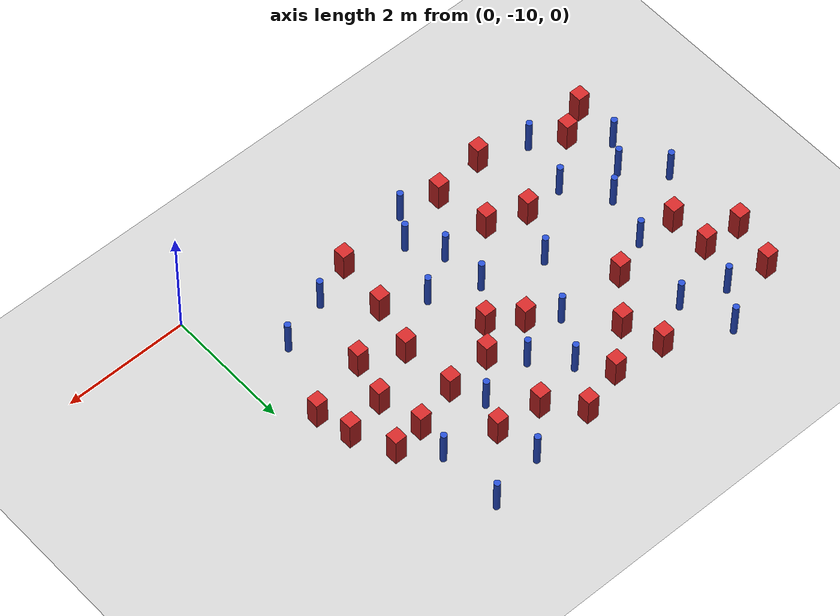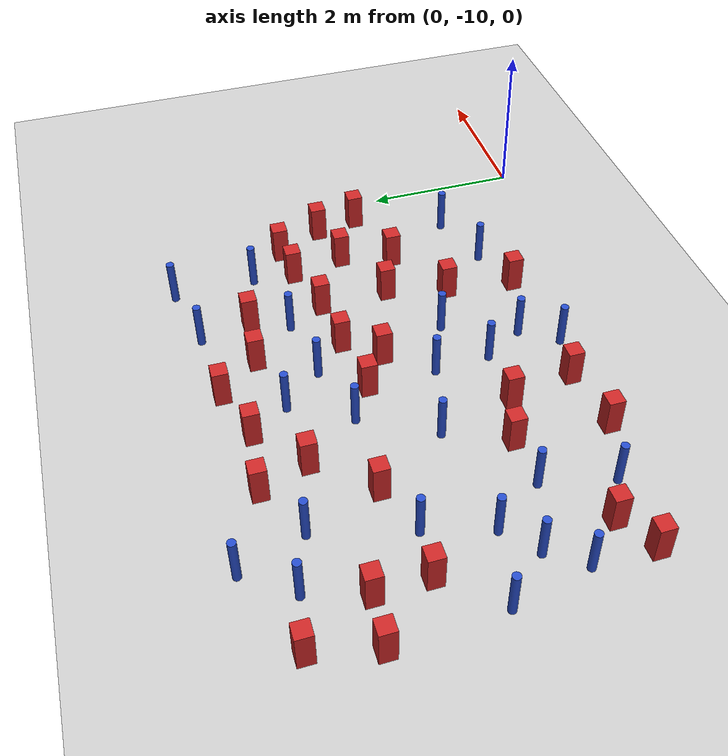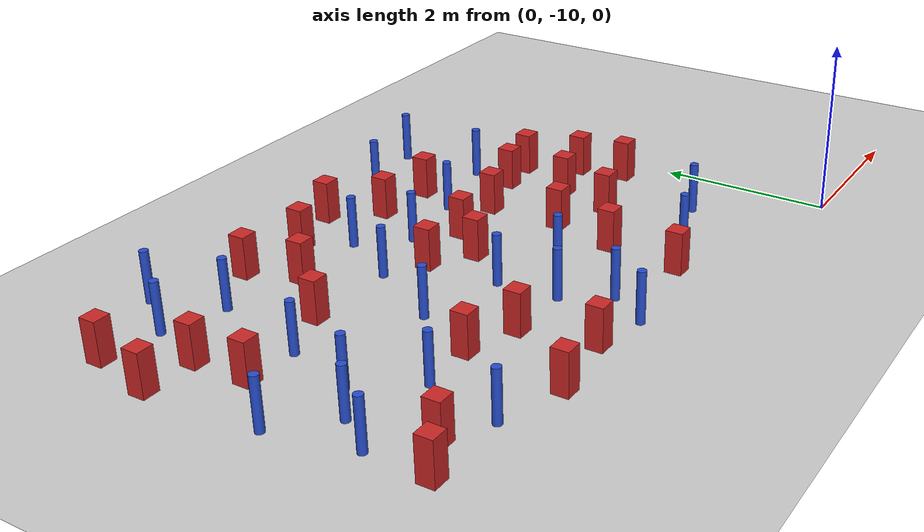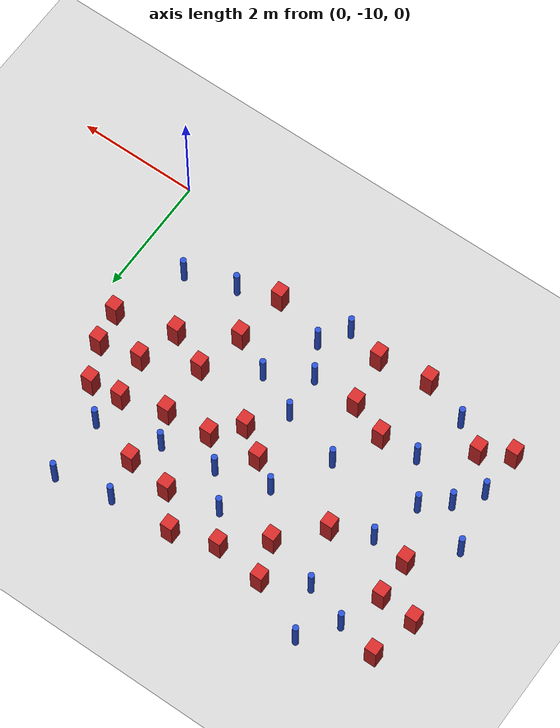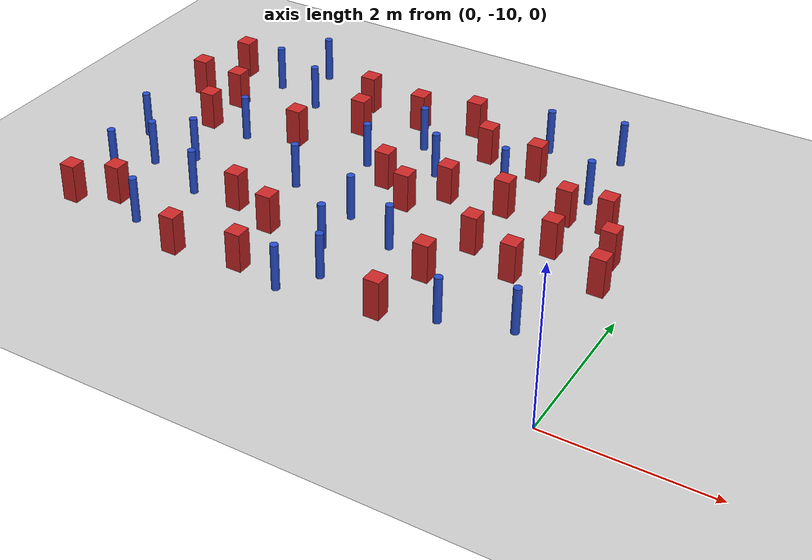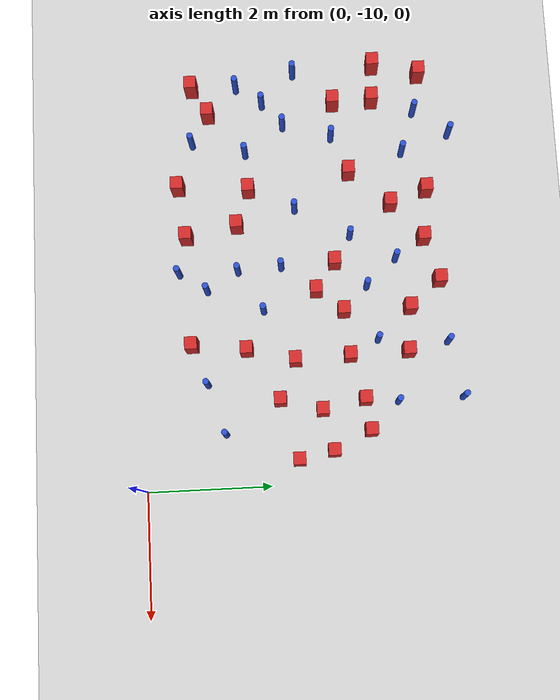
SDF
<sdf version="1.6">
 <world name="default">
  <model name="ground_plane">
   <static>1</static>
   <link name="link">
    <collision name="collision">
     <geometry><plane><normal>0 0 1</normal><size>100 100</size></plane></geometry>
     <surface><friction><ode><mu>100</mu><mu2>50</mu2></ode></friction></surface>
    </collision>
    <visual name="visual">
     <cast_shadows>0</cast_shadows>
     <geometry><plane><normal>0 0 1</normal><size>100 100</size></plane></geometry>
     <material>
      <ambient>1.0 1.0 1.0 1.0</ambient>
      <diffuse>0.8 0.8 0.8 1.0</diffuse>
      <specular>0.01 0.01 0.01 1.000000</specular>
     </material>
    </visual>
   </link>
  </model>
  <model name="square_post_obstacle3">
   <static>true</static>
   <pose>-4.75040820775 -5.25794380199 1.91545236811e-07 -7.35059704564e-06 1.12565212e-07 2.39332434364e-05</pose>
   <link name="link">
    <pose>0 0 0.25 0 -0 0</pose>
    <inertial>
     <mass>100</mass>
     <inertia>
      <ixx>0.166667</ixx>
      <ixy>0</ixy>
      <ixz>0</ixz>
      <iyy>0.166667</iyy>
      <iyz>0</iyz>
      <izz>0.166667</izz>
     </inertia>
    </inertial>
    <collision name="collision"><geometry><box><size>.2 .2 .5</size></box></geometry></collision>
    <visual name="visual">
     <geometry><box><size>.2 .2 .5</size></box></geometry>
     <material>
      <script><name>Gazebo/Red</name><uri>file://media/materials/scripts/gazebo.material</uri></script>
     </material>
    </visual>
   </link>
  </model>
  <model name="pole_obstacle5">
   <static>true</static>
   <pose>-5.41904791078 -5.61598771798 7.38925637345e-09 -8.47170692796e-08 1.24976764786e-08 -1.74513093032e-07</pose>
   <link name="link">
    <pose>0 0 0.3 0 -0 0</pose>
    <inertial>
     <mass>1</mass>
     <inertia><ixx>0.145833</ixx><ixy>0</ixy><ixz>0</ixz><iyy>0.145833</iyy><iyz>0</iyz><izz>0.125</izz></inertia>
    </inertial>
    <collision name="collision">
     <geometry><cylinder><radius>0.05</radius><length>.6</length></cylinder></geometry>
    </collision>
    <visual name="visual">
     <geometry><cylinder><radius>0.05</radius><length>.6</length></cylinder></geometry>
     <material>
      <script><name>Gazebo/Blue</name><uri>file://media/materials/scripts/gazebo.material</uri></script>
     </material>
    </visual>
   </link>
  </model>
  <model name="pole_obstacle7">
   <static>true</static>
   <pose>-3.5572372845 -7.70122249438 7.38925637345e-09 -8.47170692798e-08 1.24976765033e-08 -1.74513093019e-07</pose>
   <link name="link">
    <pose>0 0 0.3 0 -0 0</pose>
    <inertial>
     <mass>1</mass>
     <inertia><ixx>0.145833</ixx><ixy>0</ixy><ixz>0</ixz><iyy>0.145833</iyy><iyz>0</iyz><izz>0.125</izz></inertia>
    </inertial>
    <collision name="collision">
     <geometry><cylinder><radius>0.05</radius><length>.6</length></cylinder></geometry>
    </collision>
    <visual name="visual">
     <geometry><cylinder><radius>0.05</radius><length>.6</length></cylinder></geometry>
     <material>
      <script><name>Gazebo/Blue</name><uri>file://media/materials/scripts/gazebo.material</uri></script>
     </material>
    </visual>
   </link>
  </model>
  <model name="pole_obstacle8">
   <static>true</static>
   <pose>-1.66729357442 -8.96804927392 7.38925637345e-09 -8.47170692798e-08 1.24976764881e-08 -1.74513093027e-07</pose>
   <link name="link">
    <pose>0 0 0.3 0 -0 0</pose>
    <inertial>
     <mass>1</mass>
     <inertia><ixx>0.145833</ixx><ixy>0</ixy><ixz>0</ixz><iyy>0.145833</iyy><iyz>0</iyz><izz>0.125</izz></inertia>
    </inertial>
    <collision name="collision">
     <geometry><cylinder><radius>0.05</radius><length>.6</length></cylinder></geometry>
    </collision>
    <visual name="visual">
     <geometry><cylinder><radius>0.05</radius><length>.6</length></cylinder></geometry>
     <material>
      <script><name>Gazebo/Blue</name><uri>file://media/materials/scripts/gazebo.material</uri></script>
     </material>
    </visual>
   </link>
  </model>
  <model name="pole_obstacle11">
   <static>true</static>
   <pose>-5.73747270481 -6.77735786824 7.38925637345e-09 -8.47170692796e-08 1.24976764786e-08 -1.74513093032e-07</pose>
   <link name="link">
    <pose>0 0 0.3 0 -0 0</pose>
    <inertial>
     <mass>1</mass>
     <inertia><ixx>0.145833</ixx><ixy>0</ixy><ixz>0</ixz><iyy>0.145833</iyy><iyz>0</iyz><izz>0.125</izz></inertia>
    </inertial>
    <collision name="collision">
     <geometry><cylinder><radius>0.05</radius><length>.6</length></cylinder></geometry>
    </collision>
    <visual name="visual">
     <geometry><cylinder><radius>0.05</radius><length>.6</length></cylinder></geometry>
     <material>
      <script><name>Gazebo/Blue</name><uri>file://media/materials/scripts/gazebo.material</uri></script>
     </material>
    </visual>
   </link>
  </model>
  <model name="square_post_obstacle21">
   <static>true</static>
   <pose>-6.33234513217 -6.72217850294 1.91545236811e-07 -7.35059704564e-06 1.12565212e-07 2.39332434364e-05</pose>
   <link name="link">
    <pose>0 0 0.25 0 -0 0</pose>
    <inertial>
     <mass>100</mass>
     <inertia>
      <ixx>0.166667</ixx>
      <ixy>0</ixy>
      <ixz>0</ixz>
      <iyy>0.166667</iyy>
      <iyz>0</iyz>
      <izz>0.166667</izz>
     </inertia>
    </inertial>
    <collision name="collision"><geometry><box><size>.2 .2 .5</size></box></geometry></collision>
    <visual name="visual">
     <geometry><box><size>.2 .2 .5</size></box></geometry>
     <material>
      <script><name>Gazebo/Red</name><uri>file://media/materials/scripts/gazebo.material</uri></script>
     </material>
    </visual>
   </link>
  </model>
  <model name="pole_obstacle13">
   <static>true</static>
   <pose>-1.25658136341 -5.91449885367 7.38925637345e-09 -8.47170692799e-08 1.24976765033e-08 -1.74513093018e-07</pose>
   <link name="link">
    <pose>0 0 0.3 0 -0 0</pose>
    <inertial>
     <mass>1</mass>
     <inertia><ixx>0.145833</ixx><ixy>0</ixy><ixz>0</ixz><iyy>0.145833</iyy><iyz>0</iyz><izz>0.125</izz></inertia>
    </inertial>
    <collision name="collision">
     <geometry><cylinder><radius>0.05</radius><length>.6</length></cylinder></geometry>
    </collision>
    <visual name="visual">
     <geometry><cylinder><radius>0.05</radius><length>.6</length></cylinder></geometry>
     <material>
      <script><name>Gazebo/Blue</name><uri>file://media/materials/scripts/gazebo.material</uri></script>
     </material>
    </visual>
   </link>
  </model>
  <model name="square_post_obstacle22">
   <static>true</static>
   <pose>-3.21825724609 -5.12932889793 1.91545236811e-07 -7.35059704564e-06 1.12565212e-07 2.39332434364e-05</pose>
   <link name="link">
    <pose>0 0 0.25 0 -0 0</pose>
    <inertial>
     <mass>100</mass>
     <inertia>
      <ixx>0.166667</ixx>
      <ixy>0</ixy>
      <ixz>0</ixz>
      <iyy>0.166667</iyy>
      <iyz>0</iyz>
      <izz>0.166667</izz>
     </inertia>
    </inertial>
    <collision name="collision"><geometry><box><size>.2 .2 .5</size></box></geometry></collision>
    <visual name="visual">
     <geometry><box><size>.2 .2 .5</size></box></geometry>
     <material>
      <script><name>Gazebo/Red</name><uri>file://media/materials/scripts/gazebo.material</uri></script>
     </material>
    </visual>
   </link>
  </model>
  <model name="square_post_obstacle26">
   <static>true</static>
   <pose>-2.00770023754 -7.53832394728 1.91545236811e-07 -7.35059704564e-06 1.12565212e-07 2.39332434364e-05</pose>
   <link name="link">
    <pose>0 0 0.25 0 -0 0</pose>
    <inertial>
     <mass>100</mass>
     <inertia>
      <ixx>0.166667</ixx>
      <ixy>0</ixy>
      <ixz>0</ixz>
      <iyy>0.166667</iyy>
      <iyz>0</iyz>
      <izz>0.166667</izz>
     </inertia>
    </inertial>
    <collision name="collision"><geometry><box><size>.2 .2 .5</size></box></geometry></collision>
    <visual name="visual">
     <geometry><box><size>.2 .2 .5</size></box></geometry>
     <material>
      <script><name>Gazebo/Red</name><uri>file://media/materials/scripts/gazebo.material</uri></script>
     </material>
    </visual>
   </link>
  </model>
  <model name="square_post_obstacle28">
   <static>true</static>
   <pose>-2.77603770056 -6.71677511362 1.91545236811e-07 -7.35059704564e-06 1.12565212e-07 2.39332434364e-05</pose>
   <link name="link">
    <pose>0 0 0.25 0 -0 0</pose>
    <inertial>
     <mass>100</mass>
     <inertia>
      <ixx>0.166667</ixx>
      <ixy>0</ixy>
      <ixz>0</ixz>
      <iyy>0.166667</iyy>
      <iyz>0</iyz>
      <izz>0.166667</izz>
     </inertia>
    </inertial>
    <collision name="collision"><geometry><box><size>.2 .2 .5</size></box></geometry></collision>
    <visual name="visual">
     <geometry><box><size>.2 .2 .5</size></box></geometry>
     <material>
      <script><name>Gazebo/Red</name><uri>file://media/materials/scripts/gazebo.material</uri></script>
     </material>
    </visual>
   </link>
  </model>
  <model name="pole_obstacle31">
   <static>true</static>
   <pose>-3.20861848336 -8.92463629734 7.38925637345e-09 -8.47170692793e-08 1.24976764408e-08 -1.74513093041e-07</pose>
   <link name="link">
    <pose>0 0 0.3 0 -0 0</pose>
    <inertial>
     <mass>1</mass>
     <inertia><ixx>0.145833</ixx><ixy>0</ixy><ixz>0</ixz><iyy>0.145833</iyy><iyz>0</iyz><izz>0.125</izz></inertia>
    </inertial>
    <collision name="collision">
     <geometry><cylinder><radius>0.05</radius><length>.6</length></cylinder></geometry>
    </collision>
    <visual name="visual">
     <geometry><cylinder><radius>0.05</radius><length>.6</length></cylinder></geometry>
     <material>
      <script><name>Gazebo/Blue</name><uri>file://media/materials/scripts/gazebo.material</uri></script>
     </material>
    </visual>
   </link>
  </model>
  <model name="pole_obstacle54">
   <static>true</static>
   <pose>-1.28207548808 -4.86159596519 7.38925637345e-09 -8.47170692799e-08 1.24976765033e-08 -1.74513093018e-07</pose>
   <link name="link">
    <pose>0 0 0.3 0 -0 0</pose>
    <inertial>
     <mass>1</mass>
     <inertia><ixx>0.145833</ixx><ixy>0</ixy><ixz>0</ixz><iyy>0.145833</iyy><iyz>0</iyz><izz>0.125</izz></inertia>
    </inertial>
    <collision name="collision">
     <geometry><cylinder><radius>0.05</radius><length>.6</length></cylinder></geometry>
    </collision>
    <visual name="visual">
     <geometry><cylinder><radius>0.05</radius><length>.6</length></cylinder></geometry>
     <material>
      <script><name>Gazebo/Blue</name><uri>file://media/materials/scripts/gazebo.material</uri></script>
     </material>
    </visual>
   </link>
  </model>
  <model name="pole_obstacle55">
   <static>true</static>
   <pose>-2.19346601943 -5.05200030553 7.38925637345e-09 -8.47170692798e-08 1.24976765033e-08 -1.74513093019e-07</pose>
   <link name="link">
    <pose>0 0 0.3 0 -0 0</pose>
    <inertial>
     <mass>1</mass>
     <inertia><ixx>0.145833</ixx><ixy>0</ixy><ixz>0</ixz><iyy>0.145833</iyy><iyz>0</iyz><izz>0.125</izz></inertia>
    </inertial>
    <collision name="collision">
     <geometry><cylinder><radius>0.05</radius><length>.6</length></cylinder></geometry>
    </collision>
    <visual name="visual">
     <geometry><cylinder><radius>0.05</radius><length>.6</length></cylinder></geometry>
     <material>
      <script><name>Gazebo/Blue</name><uri>file://media/materials/scripts/gazebo.material</uri></script>
     </material>
    </visual>
   </link>
  </model>
  <model name="square_post_obstacle66">
   <static>true</static>
   <pose>-1.17490828188 -7.13997313544 1.91545236811e-07 -7.35059704564e-06 1.12565212e-07 2.39332434364e-05</pose>
   <link name="link">
    <pose>0 0 0.25 0 -0 0</pose>
    <inertial>
     <mass>100</mass>
     <inertia>
      <ixx>0.166667</ixx>
      <ixy>0</ixy>
      <ixz>0</ixz>
      <iyy>0.166667</iyy>
      <iyz>0</iyz>
      <izz>0.166667</izz>
     </inertia>
    </inertial>
    <collision name="collision"><geometry><box><size>.2 .2 .5</size></box></geometry></collision>
    <visual name="visual">
     <geometry><box><size>.2 .2 .5</size></box></geometry>
     <material>
      <script><name>Gazebo/Red</name><uri>file://media/materials/scripts/gazebo.material</uri></script>
     </material>
    </visual>
   </link>
  </model>
  <model name="square_post_obstacle71">
   <static>true</static>
   <pose>-6.76866938418 -5.27043575749 1.91545236811e-07 -7.35059704564e-06 1.12565212e-07 2.39332434364e-05</pose>
   <link name="link">
    <pose>0 0 0.25 0 -0 0</pose>
    <inertial>
     <mass>100</mass>
     <inertia>
      <ixx>0.166667</ixx>
      <ixy>0</ixy>
      <ixz>0</ixz>
      <iyy>0.166667</iyy>
      <iyz>0</iyz>
      <izz>0.166667</izz>
     </inertia>
    </inertial>
    <collision name="collision"><geometry><box><size>.2 .2 .5</size></box></geometry></collision>
    <visual name="visual">
     <geometry><box><size>.2 .2 .5</size></box></geometry>
     <material>
      <script><name>Gazebo/Red</name><uri>file://media/materials/scripts/gazebo.material</uri></script>
     </material>
    </visual>
   </link>
  </model>
  <model name="pole_obstacle68">
   <static>true</static>
   <pose>-0.854134465293 -8.70278437342 7.38925637345e-09 -8.47170692797e-08 1.249767648e-08 -1.74513093032e-07</pose>
   <link name="link">
    <pose>0 0 0.3 0 -0 0</pose>
    <inertial>
     <mass>1</mass>
     <inertia><ixx>0.145833</ixx><ixy>0</ixy><ixz>0</ixz><iyy>0.145833</iyy><iyz>0</iyz><izz>0.125</izz></inertia>
    </inertial>
    <collision name="collision">
     <geometry><cylinder><radius>0.05</radius><length>.6</length></cylinder></geometry>
    </collision>
    <visual name="visual">
     <geometry><cylinder><radius>0.05</radius><length>.6</length></cylinder></geometry>
     <material>
      <script><name>Gazebo/Blue</name><uri>file://media/materials/scripts/gazebo.material</uri></script>
     </material>
    </visual>
   </link>
  </model>
  <model name="pole_obstacle74">
   <static>true</static>
   <pose>-6.67206594578 -8.33022040095 7.38925637345e-09 -8.471706928e-08 1.24976765081e-08 -1.74513093015e-07</pose>
   <link name="link">
    <pose>0 0 0.3 0 -0 0</pose>
    <inertial>
     <mass>1</mass>
     <inertia><ixx>0.145833</ixx><ixy>0</ixy><ixz>0</ixz><iyy>0.145833</iyy><iyz>0</iyz><izz>0.125</izz></inertia>
    </inertial>
    <collision name="collision">
     <geometry><cylinder><radius>0.05</radius><length>.6</length></cylinder></geometry>
    </collision>
    <visual name="visual">
     <geometry><cylinder><radius>0.05</radius><length>.6</length></cylinder></geometry>
     <material>
      <script><name>Gazebo/Blue</name><uri>file://media/materials/scripts/gazebo.material</uri></script>
     </material>
    </visual>
   </link>
  </model>
  <model name="pole_obstacle81">
   <static>true</static>
   <pose>-4.52421816658 -7.43935797813 7.38925637345e-09 -8.47170692796e-08 1.24976764786e-08 -1.74513093032e-07</pose>
   <link name="link">
    <pose>0 0 0.3 0 -0 0</pose>
    <inertial>
     <mass>1</mass>
     <inertia><ixx>0.145833</ixx><ixy>0</ixy><ixz>0</ixz><iyy>0.145833</iyy><iyz>0</iyz><izz>0.125</izz></inertia>
    </inertial>
    <collision name="collision">
     <geometry><cylinder><radius>0.05</radius><length>.6</length></cylinder></geometry>
    </collision>
    <visual name="visual">
     <geometry><cylinder><radius>0.05</radius><length>.6</length></cylinder></geometry>
     <material>
      <script><name>Gazebo/Blue</name><uri>file://media/materials/scripts/gazebo.material</uri></script>
     </material>
    </visual>
   </link>
  </model>
  <model name="pole_obstacle85">
   <static>true</static>
   <pose>-5.72342418394 -9.09307023768 7.38925637345e-09 -8.471706928e-08 1.24976765081e-08 -1.74513093015e-07</pose>
   <link name="link">
    <pose>0 0 0.3 0 -0 0</pose>
    <inertial>
     <mass>1</mass>
     <inertia><ixx>0.145833</ixx><ixy>0</ixy><ixz>0</ixz><iyy>0.145833</iyy><iyz>0</iyz><izz>0.125</izz></inertia>
    </inertial>
    <collision name="collision">
     <geometry><cylinder><radius>0.05</radius><length>.6</length></cylinder></geometry>
    </collision>
    <visual name="visual">
     <geometry><cylinder><radius>0.05</radius><length>.6</length></cylinder></geometry>
     <material>
      <script><name>Gazebo/Blue</name><uri>file://media/materials/scripts/gazebo.material</uri></script>
     </material>
    </visual>
   </link>
  </model>
  <model name="pole_obstacle86">
   <static>true</static>
   <pose>-2.8366495444 -8.01783894106 7.38925637345e-09 -8.47170692795e-08 1.24976764645e-08 -1.74513093041e-07</pose>
   <link name="link">
    <pose>0 0 0.3 0 -0 0</pose>
    <inertial>
     <mass>1</mass>
     <inertia><ixx>0.145833</ixx><ixy>0</ixy><ixz>0</ixz><iyy>0.145833</iyy><iyz>0</iyz><izz>0.125</izz></inertia>
    </inertial>
    <collision name="collision">
     <geometry><cylinder><radius>0.05</radius><length>.6</length></cylinder></geometry>
    </collision>
    <visual name="visual">
     <geometry><cylinder><radius>0.05</radius><length>.6</length></cylinder></geometry>
     <material>
      <script><name>Gazebo/Blue</name><uri>file://media/materials/scripts/gazebo.material</uri></script>
     </material>
    </visual>
   </link>
  </model>
  <model name="pole_obstacle91">
   <static>true</static>
   <pose>-3.51267044847 -8.41167891589 7.38925637345e-09 -8.47170692793e-08 1.24976764408e-08 -1.74513093041e-07</pose>
   <link name="link">
    <pose>0 0 0.3 0 -0 0</pose>
    <inertial>
     <mass>1</mass>
     <inertia><ixx>0.145833</ixx><ixy>0</ixy><ixz>0</ixz><iyy>0.145833</iyy><iyz>0</iyz><izz>0.125</izz></inertia>
    </inertial>
    <collision name="collision">
     <geometry><cylinder><radius>0.05</radius><length>.6</length></cylinder></geometry>
    </collision>
    <visual name="visual">
     <geometry><cylinder><radius>0.05</radius><length>.6</length></cylinder></geometry>
     <material>
      <script><name>Gazebo/Blue</name><uri>file://media/materials/scripts/gazebo.material</uri></script>
     </material>
    </visual>
   </link>
  </model>
  <model name="square_post_obstacle87">
   <static>true</static>
   <pose>-0.515649748169 -6.98824187796 1.91545236811e-07 -7.35059704564e-06 1.12565212e-07 2.39332434364e-05</pose>
   <link name="link">
    <pose>0 0 0.25 0 -0 0</pose>
    <inertial>
     <mass>100</mass>
     <inertia>
      <ixx>0.166667</ixx>
      <ixy>0</ixy>
      <ixz>0</ixz>
      <iyy>0.166667</iyy>
      <iyz>0</iyz>
      <izz>0.166667</izz>
     </inertia>
    </inertial>
    <collision name="collision"><geometry><box><size>.2 .2 .5</size></box></geometry></collision>
    <visual name="visual">
     <geometry><box><size>.2 .2 .5</size></box></geometry>
     <material>
      <script><name>Gazebo/Red</name><uri>file://media/materials/scripts/gazebo.material</uri></script>
     </material>
    </visual>
   </link>
  </model>
  <model name="square_post_obstacle92">
   <static>true</static>
   <pose>-4.28128702221 -8.40016103278 1.91545236811e-07 -7.35059704564e-06 1.12565212e-07 2.39332434364e-05</pose>
   <link name="link">
    <pose>0 0 0.25 0 -0 0</pose>
    <inertial>
     <mass>100</mass>
     <inertia>
      <ixx>0.166667</ixx>
      <ixy>0</ixy>
      <ixz>0</ixz>
      <iyy>0.166667</iyy>
      <iyz>0</iyz>
      <izz>0.166667</izz>
     </inertia>
    </inertial>
    <collision name="collision"><geometry><box><size>.2 .2 .5</size></box></geometry></collision>
    <visual name="visual">
     <geometry><box><size>.2 .2 .5</size></box></geometry>
     <material>
      <script><name>Gazebo/Red</name><uri>file://media/materials/scripts/gazebo.material</uri></script>
     </material>
    </visual>
   </link>
  </model>
  <model name="square_post_obstacle93">
   <static>true</static>
   <pose>-2.03839218152 -6.64972489206 1.91545236811e-07 -7.35059704564e-06 1.12565212e-07 2.39332434364e-05</pose>
   <link name="link">
    <pose>0 0 0.25 0 -0 0</pose>
    <inertial>
     <mass>100</mass>
     <inertia>
      <ixx>0.166667</ixx>
      <ixy>0</ixy>
      <ixz>0</ixz>
      <iyy>0.166667</iyy>
      <iyz>0</iyz>
      <izz>0.166667</izz>
     </inertia>
    </inertial>
    <collision name="collision"><geometry><box><size>.2 .2 .5</size></box></geometry></collision>
    <visual name="visual">
     <geometry><box><size>.2 .2 .5</size></box></geometry>
     <material>
      <script><name>Gazebo/Red</name><uri>file://media/materials/scripts/gazebo.material</uri></script>
     </material>
    </visual>
   </link>
  </model>
  <model name="square_post_obstacle99">
   <static>true</static>
   <pose>-2.78251898521 -5.63511792427 1.91545236811e-07 -7.35059704564e-06 1.12565212e-07 2.39332434364e-05</pose>
   <link name="link">
    <pose>0 0 0.25 0 -0 0</pose>
    <inertial>
     <mass>100</mass>
     <inertia>
      <ixx>0.166667</ixx>
      <ixy>0</ixy>
      <ixz>0</ixz>
      <iyy>0.166667</iyy>
      <iyz>0</iyz>
      <izz>0.166667</izz>
     </inertia>
    </inertial>
    <collision name="collision"><geometry><box><size>.2 .2 .5</size></box></geometry></collision>
    <visual name="visual">
     <geometry><box><size>.2 .2 .5</size></box></geometry>
     <material>
      <script><name>Gazebo/Red</name><uri>file://media/materials/scripts/gazebo.material</uri></script>
     </material>
    </visual>
   </link>
  </model>
  <model name="square_post_obstacle102">
   <static>true</static>
   <pose>-4.97345073629 -9.34482491327 1.91545236811e-07 -7.35059704564e-06 1.12565212e-07 2.39332434364e-05</pose>
   <link name="link">
    <pose>0 0 0.25 0 -0 0</pose>
    <inertial>
     <mass>100</mass>
     <inertia>
      <ixx>0.166667</ixx>
      <ixy>0</ixy>
      <ixz>0</ixz>
      <iyy>0.166667</iyy>
      <iyz>0</iyz>
      <izz>0.166667</izz>
     </inertia>
    </inertial>
    <collision name="collision"><geometry><box><size>.2 .2 .5</size></box></geometry></collision>
    <visual name="visual">
     <geometry><box><size>.2 .2 .5</size></box></geometry>
     <material>
      <script><name>Gazebo/Red</name><uri>file://media/materials/scripts/gazebo.material</uri></script>
     </material>
    </visual>
   </link>
  </model>
  <model name="square_post_obstacle104">
   <static>true</static>
   <pose>-5.11164721147 -6.52096478131 1.91545236811e-07 -7.35059704564e-06 1.12565212e-07 2.39332434364e-05</pose>
   <link name="link">
    <pose>0 0 0.25 0 -0 0</pose>
    <inertial>
     <mass>100</mass>
     <inertia>
      <ixx>0.166667</ixx>
      <ixy>0</ixy>
      <ixz>0</ixz>
      <iyy>0.166667</iyy>
      <iyz>0</iyz>
      <izz>0.166667</izz>
     </inertia>
    </inertial>
    <collision name="collision"><geometry><box><size>.2 .2 .5</size></box></geometry></collision>
    <visual name="visual">
     <geometry><box><size>.2 .2 .5</size></box></geometry>
     <material>
      <script><name>Gazebo/Red</name><uri>file://media/materials/scripts/gazebo.material</uri></script>
     </material>
    </visual>
   </link>
  </model>
  <model name="pole_obstacle129">
   <static>true</static>
   <pose>-3.16903858844 -6.3198099116 7.38925637345e-09 -8.47170692798e-08 1.24976765033e-08 -1.74513093019e-07</pose>
   <link name="link">
    <pose>0 0 0.3 0 -0 0</pose>
    <inertial>
     <mass>1</mass>
     <inertia><ixx>0.145833</ixx><ixy>0</ixy><ixz>0</ixz><iyy>0.145833</iyy><iyz>0</iyz><izz>0.125</izz></inertia>
    </inertial>
    <collision name="collision">
     <geometry><cylinder><radius>0.05</radius><length>.6</length></cylinder></geometry>
    </collision>
    <visual name="visual">
     <geometry><cylinder><radius>0.05</radius><length>.6</length></cylinder></geometry>
     <material>
      <script><name>Gazebo/Blue</name><uri>file://media/materials/scripts/gazebo.material</uri></script>
     </material>
    </visual>
   </link>
  </model>
  <model name="pole_obstacle133">
   <static>true</static>
   <pose>-5.70384435547 -4.8218028178 7.38925637345e-09 -8.47170692796e-08 1.24976764786e-08 -1.74513093032e-07</pose>
   <link name="link">
    <pose>0 0 0.3 0 -0 0</pose>
    <inertial>
     <mass>1</mass>
     <inertia><ixx>0.145833</ixx><ixy>0</ixy><ixz>0</ixz><iyy>0.145833</iyy><iyz>0</iyz><izz>0.125</izz></inertia>
    </inertial>
    <collision name="collision">
     <geometry><cylinder><radius>0.05</radius><length>.6</length></cylinder></geometry>
    </collision>
    <visual name="visual">
     <geometry><cylinder><radius>0.05</radius><length>.6</length></cylinder></geometry>
     <material>
      <script><name>Gazebo/Blue</name><uri>file://media/materials/scripts/gazebo.material</uri></script>
     </material>
    </visual>
   </link>
  </model>
  <model name="square_post_obstacle116">
   <static>true</static>
   <pose>-3.13709994784 -7.14868101662 1.91545236811e-07 -7.35059704564e-06 1.12565212e-07 2.39332434364e-05</pose>
   <link name="link">
    <pose>0 0 0.25 0 -0 0</pose>
    <inertial>
     <mass>100</mass>
     <inertia>
      <ixx>0.166667</ixx>
      <ixy>0</ixy>
      <ixz>0</ixz>
      <iyy>0.166667</iyy>
      <iyz>0</iyz>
      <izz>0.166667</izz>
     </inertia>
    </inertial>
    <collision name="collision"><geometry><box><size>.2 .2 .5</size></box></geometry></collision>
    <visual name="visual">
     <geometry><box><size>.2 .2 .5</size></box></geometry>
     <material>
      <script><name>Gazebo/Red</name><uri>file://media/materials/scripts/gazebo.material</uri></script>
     </material>
    </visual>
   </link>
  </model>
  <model name="pole_obstacle136">
   <static>true</static>
   <pose>-2.27756281207 -6.18310734207 7.38925637345e-09 -8.47170692798e-08 1.24976765033e-08 -1.74513093019e-07</pose>
   <link name="link">
    <pose>0 0 0.3 0 -0 0</pose>
    <inertial>
     <mass>1</mass>
     <inertia><ixx>0.145833</ixx><ixy>0</ixy><ixz>0</ixz><iyy>0.145833</iyy><iyz>0</iyz><izz>0.125</izz></inertia>
    </inertial>
    <collision name="collision">
     <geometry><cylinder><radius>0.05</radius><length>.6</length></cylinder></geometry>
    </collision>
    <visual name="visual">
     <geometry><cylinder><radius>0.05</radius><length>.6</length></cylinder></geometry>
     <material>
      <script><name>Gazebo/Blue</name><uri>file://media/materials/scripts/gazebo.material</uri></script>
     </material>
    </visual>
   </link>
  </model>
  <model name="square_post_obstacle118">
   <static>true</static>
   <pose>-6.68944882884 -9.07113608227 1.91545236811e-07 -7.35059704564e-06 1.12565212e-07 2.39332434364e-05</pose>
   <link name="link">
    <pose>0 0 0.25 0 -0 0</pose>
    <inertial>
     <mass>100</mass>
     <inertia>
      <ixx>0.166667</ixx>
      <ixy>0</ixy>
      <ixz>0</ixz>
      <iyy>0.166667</iyy>
      <iyz>0</iyz>
      <izz>0.166667</izz>
     </inertia>
    </inertial>
    <collision name="collision"><geometry><box><size>.2 .2 .5</size></box></geometry></collision>
    <visual name="visual">
     <geometry><box><size>.2 .2 .5</size></box></geometry>
     <material>
      <script><name>Gazebo/Red</name><uri>file://media/materials/scripts/gazebo.material</uri></script>
     </material>
    </visual>
   </link>
  </model>
  <model name="pole_obstacle137">
   <static>true</static>
   <pose>-5.97143235773 -7.57407908389 7.38925637345e-09 -8.47170692796e-08 1.24976764786e-08 -1.74513093032e-07</pose>
   <link name="link">
    <pose>0 0 0.3 0 -0 0</pose>
    <inertial>
     <mass>1</mass>
     <inertia><ixx>0.145833</ixx><ixy>0</ixy><ixz>0</ixz><iyy>0.145833</iyy><iyz>0</iyz><izz>0.125</izz></inertia>
    </inertial>
    <collision name="collision">
     <geometry><cylinder><radius>0.05</radius><length>.6</length></cylinder></geometry>
    </collision>
    <visual name="visual">
     <geometry><cylinder><radius>0.05</radius><length>.6</length></cylinder></geometry>
     <material>
      <script><name>Gazebo/Blue</name><uri>file://media/materials/scripts/gazebo.material</uri></script>
     </material>
    </visual>
   </link>
  </model>
  <model name="square_post_obstacle128">
   <static>true</static>
   <pose>-4.12512194226 -9.23349786019 1.91545236811e-07 -7.35059704564e-06 1.12565212e-07 2.39332434364e-05</pose>
   <link name="link">
    <pose>0 0 0.25 0 -0 0</pose>
    <inertial>
     <mass>100</mass>
     <inertia>
      <ixx>0.166667</ixx>
      <ixy>0</ixy>
      <ixz>0</ixz>
      <iyy>0.166667</iyy>
      <iyz>0</iyz>
      <izz>0.166667</izz>
     </inertia>
    </inertial>
    <collision name="collision"><geometry><box><size>.2 .2 .5</size></box></geometry></collision>
    <visual name="visual">
     <geometry><box><size>.2 .2 .5</size></box></geometry>
     <material>
      <script><name>Gazebo/Red</name><uri>file://media/materials/scripts/gazebo.material</uri></script>
     </material>
    </visual>
   </link>
  </model>
  <model name="square_post_obstacle134">
   <static>true</static>
   <pose>-2.2056152314 -8.31592732232 1.91545236811e-07 -7.35059704564e-06 1.12565212e-07 2.39332434364e-05</pose>
   <link name="link">
    <pose>0 0 0.25 0 -0 0</pose>
    <inertial>
     <mass>100</mass>
     <inertia>
      <ixx>0.166667</ixx>
      <ixy>0</ixy>
      <ixz>0</ixz>
      <iyy>0.166667</iyy>
      <iyz>0</iyz>
      <izz>0.166667</izz>
     </inertia>
    </inertial>
    <collision name="collision"><geometry><box><size>.2 .2 .5</size></box></geometry></collision>
    <visual name="visual">
     <geometry><box><size>.2 .2 .5</size></box></geometry>
     <material>
      <script><name>Gazebo/Red</name><uri>file://media/materials/scripts/gazebo.material</uri></script>
     </material>
    </visual>
   </link>
  </model>
  <model name="square_post_obstacle143">
   <static>true</static>
   <pose>-2.31248441111 -9.19720259471 1.91545236811e-07 -7.35059704564e-06 1.12565212e-07 2.39332434364e-05</pose>
   <link name="link">
    <pose>0 0 0.25 0 -0 0</pose>
    <inertial>
     <mass>100</mass>
     <inertia>
      <ixx>0.166667</ixx>
      <ixy>0</ixy>
      <ixz>0</ixz>
      <iyy>0.166667</iyy>
      <iyz>0</iyz>
      <izz>0.166667</izz>
     </inertia>
    </inertial>
    <collision name="collision"><geometry><box><size>.2 .2 .5</size></box></geometry></collision>
    <visual name="visual">
     <geometry><box><size>.2 .2 .5</size></box></geometry>
     <material>
      <script><name>Gazebo/Red</name><uri>file://media/materials/scripts/gazebo.material</uri></script>
     </material>
    </visual>
   </link>
  </model>
  <model name="pole_obstacle156">
   <static>true</static>
   <pose>-4.02708373591 -6.55108923857 7.38925637345e-09 -8.47170692795e-08 1.24976764731e-08 -1.74513093035e-07</pose>
   <link name="link">
    <pose>0 0 0.3 0 -0 0</pose>
    <inertial>
     <mass>1</mass>
     <inertia><ixx>0.145833</ixx><ixy>0</ixy><ixz>0</ixz><iyy>0.145833</iyy><iyz>0</iyz><izz>0.125</izz></inertia>
    </inertial>
    <collision name="collision">
     <geometry><cylinder><radius>0.05</radius><length>.6</length></cylinder></geometry>
    </collision>
    <visual name="visual">
     <geometry><cylinder><radius>0.05</radius><length>.6</length></cylinder></geometry>
     <material>
      <script><name>Gazebo/Blue</name><uri>file://media/materials/scripts/gazebo.material</uri></script>
     </material>
    </visual>
   </link>
  </model>
  <model name="square_post_obstacle152">
   <static>true</static>
   <pose>-4.88389834456 -8.18673885703 1.91545236811e-07 -7.35059704564e-06 1.12565212e-07 2.39332434364e-05</pose>
   <link name="link">
    <pose>0 0 0.25 0 -0 0</pose>
    <inertial>
     <mass>100</mass>
     <inertia>
      <ixx>0.166667</ixx>
      <ixy>0</ixy>
      <ixz>0</ixz>
      <iyy>0.166667</iyy>
      <iyz>0</iyz>
      <izz>0.166667</izz>
     </inertia>
    </inertial>
    <collision name="collision"><geometry><box><size>.2 .2 .5</size></box></geometry></collision>
    <visual name="visual">
     <geometry><box><size>.2 .2 .5</size></box></geometry>
     <material>
      <script><name>Gazebo/Red</name><uri>file://media/materials/scripts/gazebo.material</uri></script>
     </material>
    </visual>
   </link>
  </model>
  <model name="square_post_obstacle157">
   <static>true</static>
   <pose>-0.81402038629 -6.38142395597 1.91545236811e-07 -7.35059704564e-06 1.12565212e-07 2.39332434364e-05</pose>
   <link name="link">
    <pose>0 0 0.25 0 -0 0</pose>
    <inertial>
     <mass>100</mass>
     <inertia>
      <ixx>0.166667</ixx>
      <ixy>0</ixy>
      <ixz>0</ixz>
      <iyy>0.166667</iyy>
      <iyz>0</iyz>
      <izz>0.166667</izz>
     </inertia>
    </inertial>
    <collision name="collision"><geometry><box><size>.2 .2 .5</size></box></geometry></collision>
    <visual name="visual">
     <geometry><box><size>.2 .2 .5</size></box></geometry>
     <material>
      <script><name>Gazebo/Red</name><uri>file://media/materials/scripts/gazebo.material</uri></script>
     </material>
    </visual>
   </link>
  </model>
  <model name="pole_obstacle166">
   <static>true</static>
   <pose>-5.51815777631 -8.21683551535 7.38925637345e-09 -8.471706928e-08 1.24976765081e-08 -1.74513093015e-07</pose>
   <link name="link">
    <pose>0 0 0.3 0 -0 0</pose>
    <inertial>
     <mass>1</mass>
     <inertia><ixx>0.145833</ixx><ixy>0</ixy><ixz>0</ixz><iyy>0.145833</iyy><iyz>0</iyz><izz>0.125</izz></inertia>
    </inertial>
    <collision name="collision">
     <geometry><cylinder><radius>0.05</radius><length>.6</length></cylinder></geometry>
    </collision>
    <visual name="visual">
     <geometry><cylinder><radius>0.05</radius><length>.6</length></cylinder></geometry>
     <material>
      <script><name>Gazebo/Blue</name><uri>file://media/materials/scripts/gazebo.material</uri></script>
     </material>
    </visual>
   </link>
  </model>
  <model name="pole_obstacle167">
   <static>true</static>
   <pose>-6.11473405765 -5.38493061404 7.38925637345e-09 -8.47170692796e-08 1.24976764786e-08 -1.74513093032e-07</pose>
   <link name="link">
    <pose>0 0 0.3 0 -0 0</pose>
    <inertial>
     <mass>1</mass>
     <inertia><ixx>0.145833</ixx><ixy>0</ixy><ixz>0</ixz><iyy>0.145833</iyy><iyz>0</iyz><izz>0.125</izz></inertia>
    </inertial>
    <collision name="collision">
     <geometry><cylinder><radius>0.05</radius><length>.6</length></cylinder></geometry>
    </collision>
    <visual name="visual">
     <geometry><cylinder><radius>0.05</radius><length>.6</length></cylinder></geometry>
     <material>
      <script><name>Gazebo/Blue</name><uri>file://media/materials/scripts/gazebo.material</uri></script>
     </material>
    </visual>
   </link>
  </model>
  <model name="pole_obstacle171">
   <static>true</static>
   <pose>-6.88486016123 -7.36554402394 7.38925637345e-09 -8.47170692796e-08 1.24976764786e-08 -1.74513093032e-07</pose>
   <link name="link">
    <pose>0 0 0.3 0 -0 0</pose>
    <inertial>
     <mass>1</mass>
     <inertia><ixx>0.145833</ixx><ixy>0</ixy><ixz>0</ixz><iyy>0.145833</iyy><iyz>0</iyz><izz>0.125</izz></inertia>
    </inertial>
    <collision name="collision">
     <geometry><cylinder><radius>0.05</radius><length>.6</length></cylinder></geometry>
    </collision>
    <visual name="visual">
     <geometry><cylinder><radius>0.05</radius><length>.6</length></cylinder></geometry>
     <material>
      <script><name>Gazebo/Blue</name><uri>file://media/materials/scripts/gazebo.material</uri></script>
     </material>
    </visual>
   </link>
  </model>
  <model name="square_post_obstacle162">
   <static>true</static>
   <pose>-6.95576320268 -6.02784720979 1.91545236811e-07 -7.35059704564e-06 1.12565212e-07 2.39332434364e-05</pose>
   <link name="link">
    <pose>0 0 0.25 0 -0 0</pose>
    <inertial>
     <mass>100</mass>
     <inertia>
      <ixx>0.166667</ixx>
      <ixy>0</ixy>
      <ixz>0</ixz>
      <iyy>0.166667</iyy>
      <iyz>0</iyz>
      <izz>0.166667</izz>
     </inertia>
    </inertial>
    <collision name="collision"><geometry><box><size>.2 .2 .5</size></box></geometry></collision>
    <visual name="visual">
     <geometry><box><size>.2 .2 .5</size></box></geometry>
     <material>
      <script><name>Gazebo/Red</name><uri>file://media/materials/scripts/gazebo.material</uri></script>
     </material>
    </visual>
   </link>
  </model>
  <model name="square_post_obstacle167">
   <static>true</static>
   <pose>-3.93608238366 -5.34859994499 1.91545236811e-07 -7.35059704564e-06 1.12565212e-07 2.39332434364e-05</pose>
   <link name="link">
    <pose>0 0 0.25 0 -0 0</pose>
    <inertial>
     <mass>100</mass>
     <inertia>
      <ixx>0.166667</ixx>
      <ixy>0</ixy>
      <ixz>0</ixz>
      <iyy>0.166667</iyy>
      <iyz>0</iyz>
      <izz>0.166667</izz>
     </inertia>
    </inertial>
    <collision name="collision"><geometry><box><size>.2 .2 .5</size></box></geometry></collision>
    <visual name="visual">
     <geometry><box><size>.2 .2 .5</size></box></geometry>
     <material>
      <script><name>Gazebo/Red</name><uri>file://media/materials/scripts/gazebo.material</uri></script>
     </material>
    </visual>
   </link>
  </model>
  <model name="pole_obstacle179">
   <static>true</static>
   <pose>-3.61165677816 -5.82354348004 7.38925637345e-09 -8.47170692794e-08 1.24976764468e-08 -1.7451309304e-07</pose>
   <link name="link">
    <pose>0 0 0.3 0 -0 0</pose>
    <inertial>
     <mass>1</mass>
     <inertia><ixx>0.145833</ixx><ixy>0</ixy><ixz>0</ixz><iyy>0.145833</iyy><iyz>0</iyz><izz>0.125</izz></inertia>
    </inertial>
    <collision name="collision">
     <geometry><cylinder><radius>0.05</radius><length>.6</length></cylinder></geometry>
    </collision>
    <visual name="visual">
     <geometry><cylinder><radius>0.05</radius><length>.6</length></cylinder></geometry>
     <material>
      <script><name>Gazebo/Blue</name><uri>file://media/materials/scripts/gazebo.material</uri></script>
     </material>
    </visual>
   </link>
  </model>
  <model name="square_post_obstacle175">
   <static>true</static>
   <pose>-1.32060467987 -6.44582386516 1.91545236811e-07 -7.35059704564e-06 1.12565212e-07 2.39332434364e-05</pose>
   <link name="link">
    <pose>0 0 0.25 0 -0 0</pose>
    <inertial>
     <mass>100</mass>
     <inertia>
      <ixx>0.166667</ixx>
      <ixy>0</ixy>
      <ixz>0</ixz>
      <iyy>0.166667</iyy>
      <iyz>0</iyz>
      <izz>0.166667</izz>
     </inertia>
    </inertial>
    <collision name="collision"><geometry><box><size>.2 .2 .5</size></box></geometry></collision>
    <visual name="visual">
     <geometry><box><size>.2 .2 .5</size></box></geometry>
     <material>
      <script><name>Gazebo/Red</name><uri>file://media/materials/scripts/gazebo.material</uri></script>
     </material>
    </visual>
   </link>
  </model>
  <model name="square_post_obstacle178">
   <static>true</static>
   <pose>-0.398201763435 -7.54636703998 1.91545236811e-07 -7.35059704564e-06 1.12565212e-07 2.39332434364e-05</pose>
   <link name="link">
    <pose>0 0 0.25 0 -0 0</pose>
    <inertial>
     <mass>100</mass>
     <inertia>
      <ixx>0.166667</ixx>
      <ixy>0</ixy>
      <ixz>0</ixz>
      <iyy>0.166667</iyy>
      <iyz>0</iyz>
      <izz>0.166667</izz>
     </inertia>
    </inertial>
    <collision name="collision"><geometry><box><size>.2 .2 .5</size></box></geometry></collision>
    <visual name="visual">
     <geometry><box><size>.2 .2 .5</size></box></geometry>
     <material>
      <script><name>Gazebo/Red</name><uri>file://media/materials/scripts/gazebo.material</uri></script>
     </material>
    </visual>
   </link>
  </model>
  <model name="square_post_obstacle180">
   <static>true</static>
   <pose>-1.3689748448 -7.80830546568 1.91545236811e-07 -7.35059704564e-06 1.12565212e-07 2.39332434364e-05</pose>
   <link name="link">
    <pose>0 0 0.25 0 -0 0</pose>
    <inertial>
     <mass>100</mass>
     <inertia>
      <ixx>0.166667</ixx>
      <ixy>0</ixy>
      <ixz>0</ixz>
      <iyy>0.166667</iyy>
      <iyz>0</iyz>
      <izz>0.166667</izz>
     </inertia>
    </inertial>
    <collision name="collision"><geometry><box><size>.2 .2 .5</size></box></geometry></collision>
    <visual name="visual">
     <geometry><box><size>.2 .2 .5</size></box></geometry>
     <material>
      <script><name>Gazebo/Red</name><uri>file://media/materials/scripts/gazebo.material</uri></script>
     </material>
    </visual>
   </link>
  </model>
  <model name="pole_obstacle201">
   <static>true</static>
   <pose>-6.3677263317 -7.90531121898 7.38925637345e-09 -8.47170692796e-08 1.24976764786e-08 -1.74513093032e-07</pose>
   <link name="link">
    <pose>0 0 0.3 0 -0 0</pose>
    <inertial>
     <mass>1</mass>
     <inertia><ixx>0.145833</ixx><ixy>0</ixy><ixz>0</ixz><iyy>0.145833</iyy><iyz>0</iyz><izz>0.125</izz></inertia>
    </inertial>
    <collision name="collision">
     <geometry><cylinder><radius>0.05</radius><length>.6</length></cylinder></geometry>
    </collision>
    <visual name="visual">
     <geometry><cylinder><radius>0.05</radius><length>.6</length></cylinder></geometry>
     <material>
      <script><name>Gazebo/Blue</name><uri>file://media/materials/scripts/gazebo.material</uri></script>
     </material>
    </visual>
   </link>
  </model>
  <model name="pole_obstacle210">
   <static>true</static>
   <pose>-3.51240086952 -9.37547112857 7.38925637345e-09 -8.47170692799e-08 1.24976765012e-08 -1.74513093021e-07</pose>
   <link name="link">
    <pose>0 0 0.3 0 -0 0</pose>
    <inertial>
     <mass>1</mass>
     <inertia><ixx>0.145833</ixx><ixy>0</ixy><ixz>0</ixz><iyy>0.145833</iyy><iyz>0</iyz><izz>0.125</izz></inertia>
    </inertial>
    <collision name="collision">
     <geometry><cylinder><radius>0.05</radius><length>.6</length></cylinder></geometry>
    </collision>
    <visual name="visual">
     <geometry><cylinder><radius>0.05</radius><length>.6</length></cylinder></geometry>
     <material>
      <script><name>Gazebo/Blue</name><uri>file://media/materials/scripts/gazebo.material</uri></script>
     </material>
    </visual>
   </link>
  </model>
  <model name="square_post_obstacle201">
   <static>true</static>
   <pose>-6.35249804434 -6.07154373998 1.91545236811e-07 -7.35059704564e-06 1.12565212e-07 2.39332434364e-05</pose>
   <link name="link">
    <pose>0 0 0.25 0 -0 0</pose>
    <inertial>
     <mass>100</mass>
     <inertia>
      <ixx>0.166667</ixx>
      <ixy>0</ixy>
      <ixz>0</ixz>
      <iyy>0.166667</iyy>
      <iyz>0</iyz>
      <izz>0.166667</izz>
     </inertia>
    </inertial>
    <collision name="collision"><geometry><box><size>.2 .2 .5</size></box></geometry></collision>
    <visual name="visual">
     <geometry><box><size>.2 .2 .5</size></box></geometry>
     <material>
      <script><name>Gazebo/Red</name><uri>file://media/materials/scripts/gazebo.material</uri></script>
     </material>
    </visual>
   </link>
  </model>
  <model name="square_post_obstacle207">
   <static>true</static>
   <pose>-4.53700951803 -5.86226586956 1.91545236811e-07 -7.35059704564e-06 1.12565212e-07 2.39332434364e-05</pose>
   <link name="link">
    <pose>0 0 0.25 0 -0 0</pose>
    <inertial>
     <mass>100</mass>
     <inertia>
      <ixx>0.166667</ixx>
      <ixy>0</ixy>
      <ixz>0</ixz>
      <iyy>0.166667</iyy>
      <iyz>0</iyz>
      <izz>0.166667</izz>
     </inertia>
    </inertial>
    <collision name="collision"><geometry><box><size>.2 .2 .5</size></box></geometry></collision>
    <visual name="visual">
     <geometry><box><size>.2 .2 .5</size></box></geometry>
     <material>
      <script><name>Gazebo/Red</name><uri>file://media/materials/scripts/gazebo.material</uri></script>
     </material>
    </visual>
   </link>
  </model>
  <model name="square_post_obstacle210">
   <static>true</static>
   <pose>-6.2167641212 -8.81050276148 1.91545236811e-07 -7.35059704564e-06 1.12565212e-07 2.39332434364e-05</pose>
   <link name="link">
    <pose>0 0 0.25 0 -0 0</pose>
    <inertial>
     <mass>100</mass>
     <inertia>
      <ixx>0.166667</ixx>
      <ixy>0</ixy>
      <ixz>0</ixz>
      <iyy>0.166667</iyy>
      <iyz>0</iyz>
      <izz>0.166667</izz>
     </inertia>
    </inertial>
    <collision name="collision"><geometry><box><size>.2 .2 .5</size></box></geometry></collision>
    <visual name="visual">
     <geometry><box><size>.2 .2 .5</size></box></geometry>
     <material>
      <script><name>Gazebo/Red</name><uri>file://media/materials/scripts/gazebo.material</uri></script>
     </material>
    </visual>
   </link>
  </model>
  <model name="square_post_obstacle212">
   <static>true</static>
   <pose>-2.06742797169 -5.70449231766 1.91545236811e-07 -7.35059704564e-06 1.12565212e-07 2.39332434364e-05</pose>
   <link name="link">
    <pose>0 0 0.25 0 -0 0</pose>
    <inertial>
     <mass>100</mass>
     <inertia>
      <ixx>0.166667</ixx>
      <ixy>0</ixy>
      <ixz>0</ixz>
      <iyy>0.166667</iyy>
      <iyz>0</iyz>
      <izz>0.166667</izz>
     </inertia>
    </inertial>
    <collision name="collision"><geometry><box><size>.2 .2 .5</size></box></geometry></collision>
    <visual name="visual">
     <geometry><box><size>.2 .2 .5</size></box></geometry>
     <material>
      <script><name>Gazebo/Red</name><uri>file://media/materials/scripts/gazebo.material</uri></script>
     </material>
    </visual>
   </link>
  </model>
  <model name="square_post_obstacle217">
   <static>true</static>
   <pose>-3.59529713731 -6.82671264413 1.91545236811e-07 -7.35059704564e-06 1.12565212e-07 2.39332434364e-05</pose>
   <link name="link">
    <pose>0 0 0.25 0 -0 0</pose>
    <inertial>
     <mass>100</mass>
     <inertia>
      <ixx>0.166667</ixx>
      <ixy>0</ixy>
      <ixz>0</ixz>
      <iyy>0.166667</iyy>
      <iyz>0</iyz>
      <izz>0.166667</izz>
     </inertia>
    </inertial>
    <collision name="collision"><geometry><box><size>.2 .2 .5</size></box></geometry></collision>
    <visual name="visual">
     <geometry><box><size>.2 .2 .5</size></box></geometry>
     <material>
      <script><name>Gazebo/Red</name><uri>file://media/materials/scripts/gazebo.material</uri></script>
     </material>
    </visual>
   </link>
  </model>
 </world>
</sdf>
